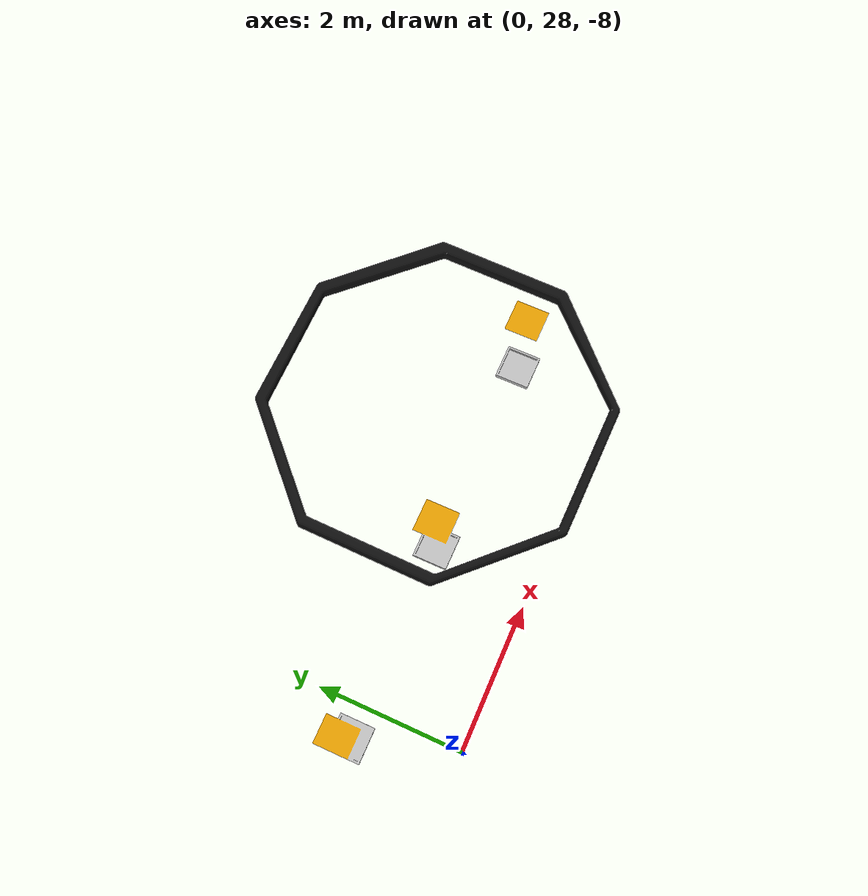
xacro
<?xml version="1.0"?>
<robot name="octagon_1" xmlns:xacro="http://www.ros.org/wiki/xacro">

<!-- Introducir meshes -->
<xacro:property name="visual_mesh_file" value="file://$(find sim_challenges)/models/meshes/Myoctagon2.dae" />

<link name="octagon_base">
    <visual>
        <origin xyz="0 2 -7" rpy="0.0 0.0 0.0"/>
        <geometry>
            <mesh filename="${visual_mesh_file}" scale="1 1 1" />
        </geometry>
    </visual>

        <!-- Se deben cambiar los parametros reales-->
    <collision>
      <origin xyz="0 2 -7" rpy="0.0 0.0 0.0"/>
      <geometry>
        <mesh filename="${visual_mesh_file}" scale="1 1 1" />
      </geometry>
    </collision>

    <inertial>
      <origin xyz="0 2 -7" rpy="0.0 0.0 0.0"/>
      <mass value="1"/>
      <inertia
        ixx="1.0" ixy="0.0" ixz="0.0"
        iyy="1.0" iyz="0.0"
        izz="1.0"/>
    </inertial>
</link>
<gazebo reference="octagon_base">
  <selfCollide>0</selfCollide>
  <turnGravityOff>1</turnGravityOff>
</gazebo>

</robot>
